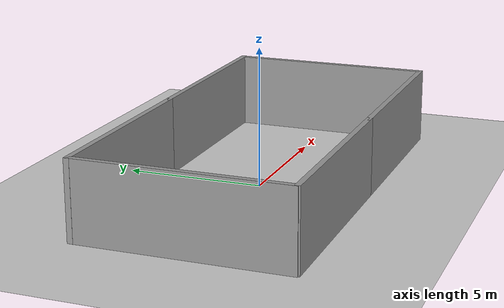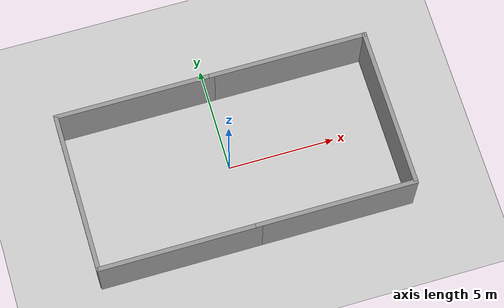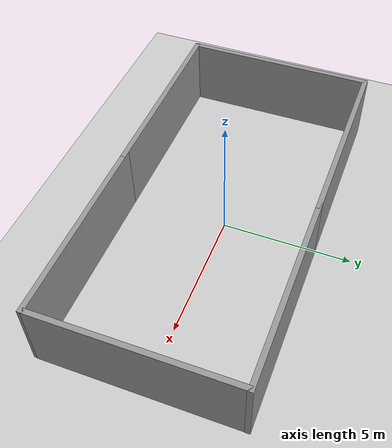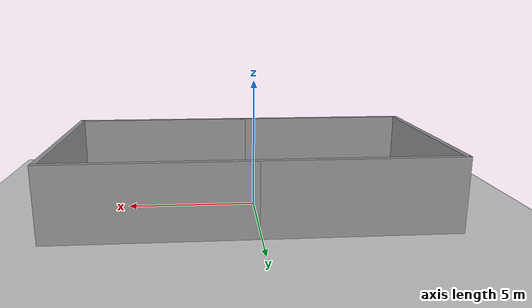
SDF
<sdf version="1.4">
 <world name="default">
  <light name="sun" type="directional">
   <pose>0 0 10 0 -0 0</pose>
   <diffuse>0.8 0.8 0.8 1</diffuse>
   <specular>0.2 0.2 0.2 1</specular>
   <attenuation>
    <range>1000</range>
    <constant>0.9</constant>
    <linear>0.01</linear>
    <quadratic>0.001</quadratic>
   </attenuation>
   <direction>-0.5 0.1 -0.9</direction>
  </light>
  <model name="ground_plane">
   <static>1</static>
   <link name="link">
    <collision name="collision">
     <geometry><plane><normal>0 0 1</normal><size>100 100</size></plane></geometry>
     <surface><friction><ode><mu>100</mu><mu2>50</mu2></ode></friction></surface>
    </collision>
    <visual name="visual">
     <cast_shadows>0</cast_shadows>
     <geometry><plane><normal>0 0 1</normal><size>100 100</size></plane></geometry>
     <material>
      <script><uri>file://media/materials/scripts/gazebo.material</uri><name>Gazebo/Grey</name></script>
     </material>
    </visual>
    <velocity_decay><linear>0</linear><angular>0</angular></velocity_decay>
   </link>
  </model>
  <physics type="ode">
   <max_step_size>0.001</max_step_size>
   <real_time_factor>1</real_time_factor>
   <real_time_update_rate>1000</real_time_update_rate>
   <gravity>0 0 -9.8</gravity>
  </physics>
  <scene><ambient>0.4 0.4 0.4 1</ambient><background>0.7 0.7 0.7 1</background><shadows>1</shadows></scene>
  <spherical_coordinates>
   <surface_model>EARTH_WGS84</surface_model>
   <latitude_deg>0</latitude_deg>
   <longitude_deg>0</longitude_deg>
   <elevation>0</elevation>
   <heading_deg>0</heading_deg>
  </spherical_coordinates>
  <model name="grey_wall">
   <static>1</static>
   <link name="link">
    <pose>0 0 1.4 0 -0 0</pose>
    <collision name="collision"><geometry><box><size>7.5 0.2 2.8</size></box></geometry></collision>
    <visual name="visual">
     <cast_shadows>0</cast_shadows>
     <geometry><box><size>7.5 0.2 2.8</size></box></geometry>
     <material>
      <script>
       <uri>model://grey_wall/materials/scripts</uri>
       <uri>model://grey_wall/materials/textures</uri>
       <name>vrc/grey_wall</name>
      </script>
     </material>
    </visual>
    <velocity_decay><linear>0</linear><angular>0</angular></velocity_decay>
   </link>
   <pose>-3.35655 -3.8651 0 0 -0 0</pose>
  </model>
  <model name="grey_wall_0">
   <static>1</static>
   <link name="link">
    <pose>0 0 1.4 0 -0 0</pose>
    <collision name="collision"><geometry><box><size>7.5 0.2 2.8</size></box></geometry></collision>
    <visual name="visual">
     <cast_shadows>0</cast_shadows>
     <geometry><box><size>7.5 0.2 2.8</size></box></geometry>
     <material>
      <script>
       <uri>model://grey_wall/materials/scripts</uri>
       <uri>model://grey_wall/materials/textures</uri>
       <name>vrc/grey_wall</name>
      </script>
     </material>
    </visual>
    <velocity_decay><linear>0</linear><angular>0</angular></velocity_decay>
   </link>
   <pose>-3.43352 3.55169 0 0 -0 0</pose>
  </model>
  <model name="grey_wall_1">
   <static>1</static>
   <link name="link">
    <pose>0 0 1.4 0 -0 0</pose>
    <collision name="collision"><geometry><box><size>7.5 0.2 2.8</size></box></geometry></collision>
    <visual name="visual">
     <cast_shadows>0</cast_shadows>
     <geometry><box><size>7.5 0.2 2.8</size></box></geometry>
     <material>
      <script>
       <uri>model://grey_wall/materials/scripts</uri>
       <uri>model://grey_wall/materials/textures</uri>
       <name>vrc/grey_wall</name>
      </script>
     </material>
    </visual>
    <velocity_decay><linear>0</linear><angular>0</angular></velocity_decay>
   </link>
   <pose>3.82305 3.55252 0 0 -0 0</pose>
  </model>
  <model name="grey_wall_2">
   <static>1</static>
   <link name="link">
    <pose>0 0 1.4 0 -0 0</pose>
    <collision name="collision"><geometry><box><size>7.5 0.2 2.8</size></box></geometry></collision>
    <visual name="visual">
     <cast_shadows>0</cast_shadows>
     <geometry><box><size>7.5 0.2 2.8</size></box></geometry>
     <material>
      <script>
       <uri>model://grey_wall/materials/scripts</uri>
       <uri>model://grey_wall/materials/textures</uri>
       <name>vrc/grey_wall</name>
      </script>
     </material>
    </visual>
    <velocity_decay><linear>0</linear><angular>0</angular></velocity_decay>
   </link>
   <pose>3.83425 -3.86505 0 0 -0 0</pose>
  </model>
  <model name="grey_wall_3">
   <static>1</static>
   <link name="link">
    <pose>0 0 1.4 0 -0 0</pose>
    <collision name="collision"><geometry><box><size>7.5 0.2 2.8</size></box></geometry></collision>
    <visual name="visual">
     <cast_shadows>0</cast_shadows>
     <geometry><box><size>7.5 0.2 2.8</size></box></geometry>
     <material>
      <script>
       <uri>model://grey_wall/materials/scripts</uri>
       <uri>model://grey_wall/materials/textures</uri>
       <name>vrc/grey_wall</name>
      </script>
     </material>
    </visual>
    <velocity_decay><linear>0</linear><angular>0</angular></velocity_decay>
   </link>
   <pose>-7.06377 -0.155674 0 0 -0 1.57575</pose>
  </model>
  <model name="grey_wall_4">
   <static>1</static>
   <link name="link">
    <pose>0 0 1.4 0 -0 0</pose>
    <collision name="collision"><geometry><box><size>7.5 0.2 2.8</size></box></geometry></collision>
    <visual name="visual">
     <cast_shadows>0</cast_shadows>
     <geometry><box><size>7.5 0.2 2.8</size></box></geometry>
     <material>
      <script>
       <uri>model://grey_wall/materials/scripts</uri>
       <uri>model://grey_wall/materials/textures</uri>
       <name>vrc/grey_wall</name>
      </script>
     </material>
    </visual>
    <velocity_decay><linear>0</linear><angular>0</angular></velocity_decay>
   </link>
   <pose>7.47947 -0.105262 0 0 0 -1.56648</pose>
  </model>
 </world>
</sdf>
